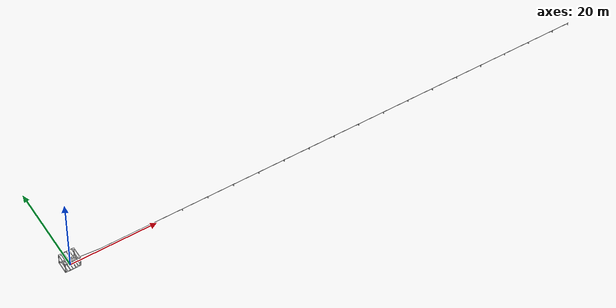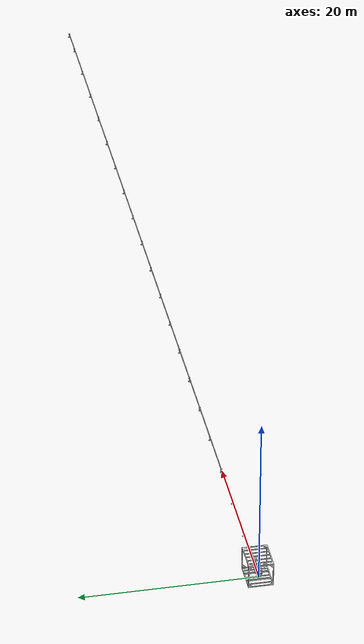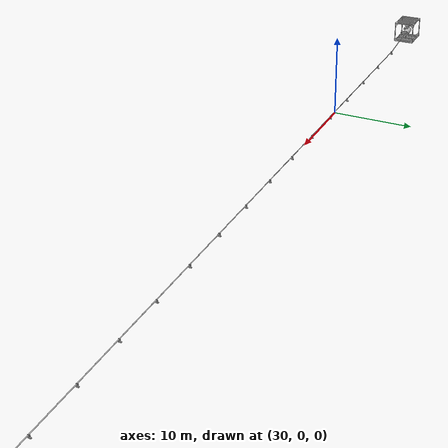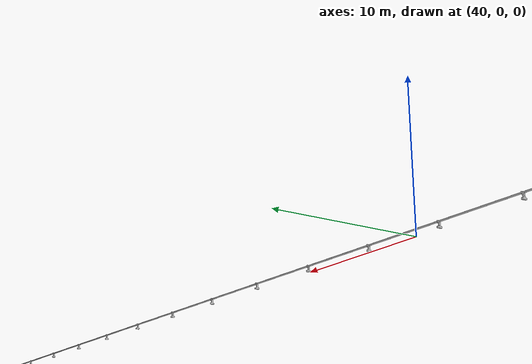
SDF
<?xml version="1.0"?>
<sdf version="1.4">
    <model name="ssiv_mockup_bahia">
        <pose>0 0 0 0 0 0</pose>
        <static>true</static>
        <link name="ssiv_mockup_bahia_body">
            <visual name="visual">
                <geometry>
                    <mesh>
                        <uri>model://ssiv_mockup_bahia/visual.osgb</uri>
                    </mesh>
                </geometry>
            </visual>
            <collision name="collision">
                <geometry>
                    <mesh>
                        <uri>model://ssiv_mockup_bahia/collision.stl</uri>
                    </mesh>
                </geometry>
            </collision>
            <inertial>
                <pose>0 0 -1 0 0 0</pose>
                <inertia>
                    <ixx>0.0</ixx>
                    <ixy>0</ixy>
                    <ixz>0.0</ixz>
                    <iyy>0.0</iyy>
                    <iyz>0</iyz>
                    <izz>0.0</izz>
                </inertia>
                <mass>1.0</mass>
            </inertial>
        </link>
    </model>
</sdf>
